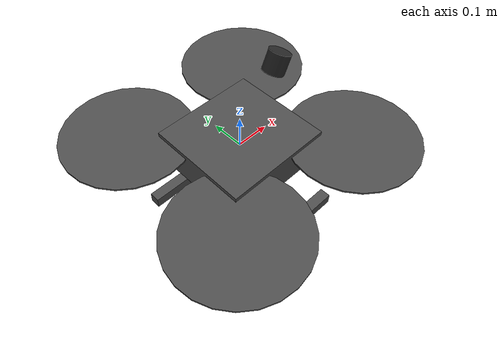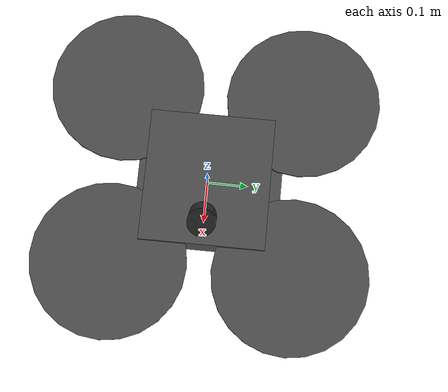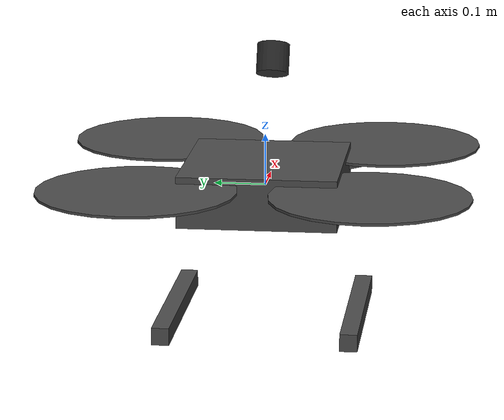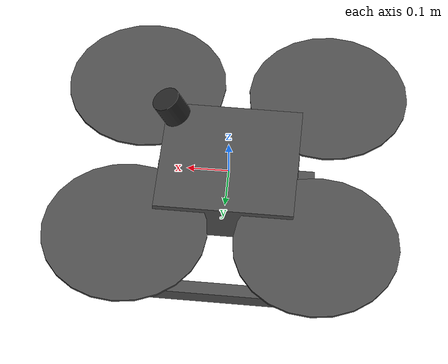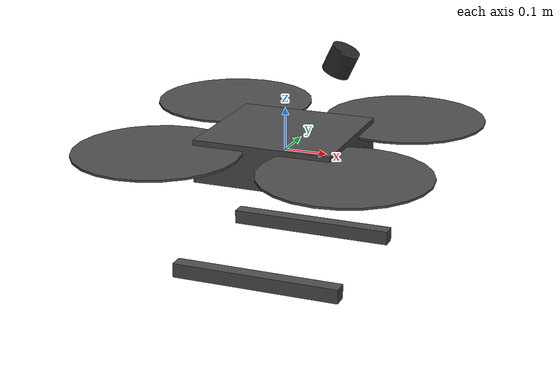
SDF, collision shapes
<?xml version="1.0"?>
<sdf version="1.6">
  <model name="iris_mid360">
    <include>
      <uri>model://mine_uav_800_no_gps</uri>
      <name>iris</name>
    </include>

    <link name="mid360_link">
      <!-- FLU: 131.5 mm forward, 173 mm above the 50 mm body-top
           reference, pitched 25 deg toward -Z. -->
      <pose>0.1315 0 0.223 0 0.436332313 0</pose>
      <inertial>
        <!-- Livox MID360S mass used by the canonical vehicle: 265 g. -->
        <mass>0.265</mass>
        <inertia>
          <ixx>1.50e-4</ixx>
          <iyy>1.50e-4</iyy>
          <izz>1.40e-4</izz>
        </inertia>
      </inertial>
      <collision name="collision">
        <geometry>
          <cylinder>
            <radius>0.0325</radius>
            <length>0.06</length>
          </cylinder>
        </geometry>
      </collision>
      <visual name="visual">
        <geometry>
          <cylinder>
            <radius>0.0325</radius>
            <length>0.06</length>
          </cylinder>
        </geometry>
        <material>
          <ambient>0.1 0.1 0.1 1</ambient>
          <diffuse>0.15 0.15 0.15 1</diffuse>
        </material>
      </visual>

      <sensor name="mid360_ray" type="ray">
        <pose>0 0 0 0 0 0</pose>
        <always_on>true</always_on>
        <update_rate>10</update_rate>
        <visualize>false</visualize>
        <ray>
          <scan>
            <horizontal>
              <samples>360</samples>
              <resolution>1</resolution>
              <min_angle>-3.14159265</min_angle>
              <max_angle>3.14159265</max_angle>
            </horizontal>
            <vertical>
              <samples>32</samples>
              <resolution>1</resolution>
              <min_angle>-0.122173048</min_angle>
              <max_angle>0.907571211</max_angle>
            </vertical>
          </scan>
          <range>
            <min>0.20</min>
            <max>30.0</max>
            <resolution>0.03</resolution>
          </range>
          <noise>
            <type>gaussian</type>
            <mean>0.0</mean>
            <stddev>0.02</stddev>
          </noise>
        </ray>
        <plugin name="mid360_ros" filename="libgazebo_ros_block_laser.so">
          <robotNamespace>/</robotNamespace>
          <alwaysOn>true</alwaysOn>
          <updateRate>10</updateRate>
          <topicName>/mine_uav/sitl/mid360/points</topicName>
          <frameName>mid360_link</frameName>
          <gaussianNoise>0.0</gaussianNoise>
        </plugin>
      </sensor>
      <sensor name="shaft_downward_ray" type="ray">
        <pose>0.122980734 0 -0.574888632 0 1.134464014 0</pose>
        <always_on>true</always_on>
        <update_rate>20</update_rate>
        <ray>
          <scan>
            <horizontal>
              <samples>11</samples><resolution>1</resolution>
              <min_angle>-0.785398163</min_angle><max_angle>0.785398163</max_angle>
            </horizontal>
            <vertical>
              <samples>11</samples><resolution>1</resolution>
              <min_angle>-0.785398163</min_angle><max_angle>0.785398163</max_angle>
            </vertical>
          </scan>
          <range><min>0.2</min><max>30.0</max><resolution>0.01</resolution></range>
          <noise><type>gaussian</type><mean>0</mean><stddev>0.01</stddev></noise>
        </ray>
        <plugin name="shaft_downward_ros" filename="libgazebo_ros_range.so">
          <robotNamespace>/</robotNamespace>
          <alwaysOn>true</alwaysOn><updateRate>20</updateRate>
          <topicName>/mine_uav/sitl/shaft_downward_range</topicName>
          <frameName>shaft_downward_range</frameName>
          <fov>1.570796327</fov><radiation>infrared</radiation>
          <gaussianNoise>0.0</gaussianNoise>
        </plugin>
      </sensor>
    </link>

    <joint name="mid360_joint" type="fixed">
      <parent>iris::base_link</parent>
      <child>mid360_link</child>
    </joint>
  </model>
</sdf>

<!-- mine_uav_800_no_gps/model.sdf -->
<!-- Canonical shared Task 1 / Task 2 vehicle model. -->
<sdf version='1.6'>
  <model name='mine_uav_800_no_gps'>
    <link name='base_link'>
      <pose>0 0 0 0 0 0</pose>
      <inertial>
        <pose>0 0 0 0 0 0</pose>
        <mass>4.536</mass>
        <inertia>
          <!-- 4.536 kg lump: 3.256 kg body/frame/avionics plus two 0.640 kg
               battery packs. Approximate inertia. The four
               0.296 kg motors are separately positioned rotor links. -->
          <ixx>0.124</ixx>
          <ixy>0</ixy>
          <ixz>0</ixz>
          <iyy>0.124</iyy>
          <iyz>0</iyz>
          <izz>0.228</izz>
        </inertia>
      </inertial>
      <!-- Collision remains a deterministic simplified hull. The detailed
           STEP-derived mesh is visual-only so ray/contact physics stay stable. -->
      <collision name='centre_body_collision'>
        <pose>0 0 0 0 0 0</pose>
        <geometry>
          <box>
            <size>0.325 0.307 0.10</size>
          </box>
        </geometry>
        <surface>
          <contact>
            <ode>
              <min_depth>0.001</min_depth>
              <max_vel>0</max_vel>
            </ode>
          </contact>
          <friction>
            <ode/>
          </friction>
        </surface>
      </collision>
      <collision name='front_right_arm_collision'>
        <pose>0.109751 -0.109751 0.015 0 0 -0.78539816339</pose>
        <geometry><box><size>0.31 0.035 0.025</size></box></geometry>
      </collision>
      <collision name='back_left_arm_collision'>
        <pose>-0.109751 0.109751 0.015 0 0 2.35619449019</pose>
        <geometry><box><size>0.31 0.035 0.025</size></box></geometry>
      </collision>
      <collision name='front_left_arm_collision'>
        <pose>0.109751 0.109751 0.015 0 0 0.78539816339</pose>
        <geometry><box><size>0.31 0.035 0.025</size></box></geometry>
      </collision>
      <collision name='back_right_arm_collision'>
        <pose>-0.109751 -0.109751 0.015 0 0 -2.35619449019</pose>
        <geometry><box><size>0.31 0.035 0.025</size></box></geometry>
      </collision>
      <collision name='left_landing_rail_collision'>
        <pose>0 0.18 -0.2548 0 0 0</pose>
        <geometry><box><size>0.40 0.034 0.034</size></box></geometry>
        <surface><contact><ode><kp>1e7</kp><kd>1e5</kd><min_depth>0.001</min_depth><max_vel>0.01</max_vel></ode></contact><friction><ode><mu>1.0</mu><mu2>1.0</mu2></ode></friction></surface>
      </collision>
      <collision name='right_landing_rail_collision'>
        <pose>0 -0.18 -0.2548 0 0 0</pose>
        <geometry><box><size>0.40 0.034 0.034</size></box></geometry>
        <surface><contact><ode><kp>1e7</kp><kd>1e5</kd><min_depth>0.001</min_depth><max_vel>0.01</max_vel></ode></contact><friction><ode><mu>1.0</mu><mu2>1.0</mu2></ode></friction></surface>
      </collision>
      <visual name='step_body_visual'>
        <!-- STEP millimetres -> metres, native [X,Y,Z] -> FLU [X,-Z,Y].
             The translation places the four motor-centre mean at the body
             origin horizontally and at z=0.035 m vertically. -->
        <pose>0.010174 1.1 0.044978 1.57079632679 0 0</pose>
        <geometry>
          <mesh>
            <uri>model://mine_uav_800_no_gps/meshes/uav_body_step_visual.stl</uri>
            <scale>0.001 0.001 0.001</scale>
          </mesh>
        </geometry>
        <material>
          <script>
            <name>Gazebo/DarkGrey</name>
            <uri>file://media/materials/scripts/gazebo.material</uri>
          </script>
        </material>
      </visual>
      <gravity>1</gravity>
      <velocity_decay/>
    </link>
    <link name='/imu_link'>
      <pose>0 0 0.02 0 0 0</pose>
      <inertial>
        <pose>0 0 0 0 0 0</pose>
        <mass>0.015</mass>
        <inertia>
          <ixx>1e-05</ixx>
          <ixy>0</ixy>
          <ixz>0</ixz>
          <iyy>1e-05</iyy>
          <iyz>0</iyz>
          <izz>1e-05</izz>
        </inertia>
      </inertial>
    </link>
    <joint name='/imu_joint' type='revolute'>
      <child>/imu_link</child>
      <parent>base_link</parent>
      <axis>
        <xyz>1 0 0</xyz>
        <limit>
          <lower>0</lower>
          <upper>0</upper>
          <effort>0</effort>
          <velocity>0</velocity>
        </limit>
        <dynamics>
          <spring_reference>0</spring_reference>
          <spring_stiffness>0</spring_stiffness>
        </dynamics>
        <use_parent_model_frame>1</use_parent_model_frame>
      </axis>
    </joint>
    <link name='rotor_0'>
      <pose>0.219501 -0.219501 0.035 0 0 0</pose>
      <inertial>
        <pose>0 0 0 0 0 0</pose>
        <mass>0.296</mass>
        <inertia>
          <!-- U7 motor plus provisional 15x5 propeller inertia. -->
          <ixx>0.00029</ixx>
          <ixy>0</ixy>
          <ixz>0</ixz>
          <iyy>0.00029</iyy>
          <iyz>0</iyz>
          <izz>0.00050</izz>
        </inertia>
      </inertial>
      <collision name='rotor_0_collision'>
        <pose>0 0 0 0 0 0</pose>
        <geometry>
          <cylinder>
            <length>0.005</length>
            <radius>0.1905</radius>
          </cylinder>
        </geometry>
        <surface>
          <contact>
            <ode/>
          </contact>
          <friction>
            <ode/>
          </friction>
        </surface>
      </collision>
      <visual name='motor_0_visual'>
        <pose>0 0 -0.01975 0 0 0</pose>
        <geometry><cylinder><length>0.0395</length><radius>0.03035</radius></cylinder></geometry>
        <material><script><name>Gazebo/DarkGrey</name><uri>file://media/materials/scripts/gazebo.material</uri></script></material>
      </visual>
      <visual name='rotor_0_visual'>
        <pose>0 0 0 0 0 0</pose>
        <geometry>
          <mesh>
            <scale>1.488 1.488 1</scale>
            <uri>model://iris/meshes/iris_prop_ccw.dae</uri>
          </mesh>
        </geometry>
        <material>
          <script>
            <name>Gazebo/Blue</name>
            <uri>file://media/materials/scripts/gazebo.material</uri>
          </script>
        </material>
      </visual>
      <gravity>1</gravity>
      <velocity_decay/>
    </link>
    <joint name='rotor_0_joint' type='revolute'>
      <child>rotor_0</child>
      <parent>base_link</parent>
      <axis>
        <xyz>0 0 1</xyz>
        <limit>
          <lower>-1e+16</lower>
          <upper>1e+16</upper>
        </limit>
        <dynamics>
          <spring_reference>0</spring_reference>
          <spring_stiffness>0</spring_stiffness>
        </dynamics>
        <use_parent_model_frame>1</use_parent_model_frame>
      </axis>
    </joint>
    <link name='rotor_1'>
      <pose>-0.219501 0.219501 0.035 0 0 0</pose>
      <inertial>
        <pose>0 0 0 0 0 0</pose>
        <mass>0.296</mass>
        <inertia>
          <!-- U7 motor plus provisional 15x5 propeller inertia. -->
          <ixx>0.00029</ixx>
          <ixy>0</ixy>
          <ixz>0</ixz>
          <iyy>0.00029</iyy>
          <iyz>0</iyz>
          <izz>0.00050</izz>
        </inertia>
      </inertial>
      <collision name='rotor_1_collision'>
        <pose>0 0 0 0 0 0</pose>
        <geometry>
          <cylinder>
            <length>0.005</length>
            <radius>0.1905</radius>
          </cylinder>
        </geometry>
        <surface>
          <contact>
            <ode/>
          </contact>
          <friction>
            <ode/>
          </friction>
        </surface>
      </collision>
      <visual name='motor_1_visual'>
        <pose>0 0 -0.01975 0 0 0</pose>
        <geometry><cylinder><length>0.0395</length><radius>0.03035</radius></cylinder></geometry>
        <material><script><name>Gazebo/DarkGrey</name><uri>file://media/materials/scripts/gazebo.material</uri></script></material>
      </visual>
      <visual name='rotor_1_visual'>
        <pose>0 0 0 0 0 0</pose>
        <geometry>
          <mesh>
            <scale>1.488 1.488 1</scale>
            <uri>model://iris/meshes/iris_prop_ccw.dae</uri>
          </mesh>
        </geometry>
        <material>
          <script>
            <name>Gazebo/DarkGrey</name>
            <uri>file://media/materials/scripts/gazebo.material</uri>
          </script>
        </material>
      </visual>
      <gravity>1</gravity>
      <velocity_decay/>
    </link>
    <joint name='rotor_1_joint' type='revolute'>
      <child>rotor_1</child>
      <parent>base_link</parent>
      <axis>
        <xyz>0 0 1</xyz>
        <limit>
          <lower>-1e+16</lower>
          <upper>1e+16</upper>
        </limit>
        <dynamics>
          <spring_reference>0</spring_reference>
          <spring_stiffness>0</spring_stiffness>
        </dynamics>
        <use_parent_model_frame>1</use_parent_model_frame>
      </axis>
    </joint>
    <link name='rotor_2'>
      <pose>0.219501 0.219501 0.035 0 0 0</pose>
      <inertial>
        <pose>0 0 0 0 0 0</pose>
        <mass>0.296</mass>
        <inertia>
          <!-- U7 motor plus provisional 15x5 propeller inertia. -->
          <ixx>0.00029</ixx>
          <ixy>0</ixy>
          <ixz>0</ixz>
          <iyy>0.00029</iyy>
          <iyz>0</iyz>
          <izz>0.00050</izz>
        </inertia>
      </inertial>
      <collision name='rotor_2_collision'>
        <pose>0 0 0 0 0 0</pose>
        <geometry>
          <cylinder>
            <length>0.005</length>
            <radius>0.1905</radius>
          </cylinder>
        </geometry>
        <surface>
          <contact>
            <ode/>
          </contact>
          <friction>
            <ode/>
          </friction>
        </surface>
      </collision>
      <visual name='motor_2_visual'>
        <pose>0 0 -0.01975 0 0 0</pose>
        <geometry><cylinder><length>0.0395</length><radius>0.03035</radius></cylinder></geometry>
        <material><script><name>Gazebo/DarkGrey</name><uri>file://media/materials/scripts/gazebo.material</uri></script></material>
      </visual>
      <visual name='rotor_2_visual'>
        <pose>0 0 0 0 0 0</pose>
        <geometry>
          <mesh>
            <scale>1.488 1.488 1</scale>
            <uri>model://iris/meshes/iris_prop_cw.dae</uri>
          </mesh>
        </geometry>
        <material>
          <script>
            <name>Gazebo/Blue</name>
            <uri>file://media/materials/scripts/gazebo.material</uri>
          </script>
        </material>
      </visual>
      <gravity>1</gravity>
      <velocity_decay/>
    </link>
    <joint name='rotor_2_joint' type='revolute'>
      <child>rotor_2</child>
      <parent>base_link</parent>
      <axis>
        <xyz>0 0 1</xyz>
        <limit>
          <lower>-1e+16</lower>
          <upper>1e+16</upper>
        </limit>
        <dynamics>
          <spring_reference>0</spring_reference>
          <spring_stiffness>0</spring_stiffness>
        </dynamics>
        <use_parent_model_frame>1</use_parent_model_frame>
      </axis>
    </joint>
    <link name='rotor_3'>
      <pose>-0.219501 -0.219501 0.035 0 0 0</pose>
      <inertial>
        <pose>0 0 0 0 0 0</pose>
        <mass>0.296</mass>
        <inertia>
          <!-- U7 motor plus provisional 15x5 propeller inertia. -->
          <ixx>0.00029</ixx>
          <ixy>0</ixy>
          <ixz>0</ixz>
          <iyy>0.00029</iyy>
          <iyz>0</iyz>
          <izz>0.00050</izz>
        </inertia>
      </inertial>
      <collision name='rotor_3_collision'>
        <pose>0 0 0 0 0 0</pose>
        <geometry>
          <cylinder>
            <length>0.005</length>
            <radius>0.1905</radius>
          </cylinder>
        </geometry>
        <surface>
          <contact>
            <ode/>
          </contact>
          <friction>
            <ode/>
          </friction>
        </surface>
      </collision>
      <visual name='motor_3_visual'>
        <pose>0 0 -0.01975 0 0 0</pose>
        <geometry><cylinder><length>0.0395</length><radius>0.03035</radius></cylinder></geometry>
        <material><script><name>Gazebo/DarkGrey</name><uri>file://media/materials/scripts/gazebo.material</uri></script></material>
      </visual>
      <visual name='rotor_3_visual'>
        <pose>0 0 0 0 0 0</pose>
        <geometry>
          <mesh>
            <scale>1.488 1.488 1</scale>
            <uri>model://iris/meshes/iris_prop_cw.dae</uri>
          </mesh>
        </geometry>
        <material>
          <script>
            <name>Gazebo/DarkGrey</name>
            <uri>file://media/materials/scripts/gazebo.material</uri>
          </script>
        </material>
      </visual>
      <gravity>1</gravity>
      <velocity_decay/>
    </link>
    <joint name='rotor_3_joint' type='revolute'>
      <child>rotor_3</child>
      <parent>base_link</parent>
      <axis>
        <xyz>0 0 1</xyz>
        <limit>
          <lower>-1e+16</lower>
          <upper>1e+16</upper>
        </limit>
        <dynamics>
          <spring_reference>0</spring_reference>
          <spring_stiffness>0</spring_stiffness>
        </dynamics>
        <use_parent_model_frame>1</use_parent_model_frame>
      </axis>
    </joint>
    <plugin name='rosbag' filename='libgazebo_multirotor_base_plugin.so'>
      <robotNamespace/>
      <linkName>base_link</linkName>
      <rotorVelocitySlowdownSim>10</rotorVelocitySlowdownSim>
    </plugin>
    <plugin name='front_right_motor_model' filename='libgazebo_motor_model.so'>
      <robotNamespace/>
      <jointName>rotor_0_joint</jointName>
      <linkName>rotor_0</linkName>
      <turningDirection>ccw</turningDirection>
      <timeConstantUp>0.0125</timeConstantUp>
      <timeConstantDown>0.025</timeConstantDown>
      <maxRotVelocity>973.768059</maxRotVelocity>
      <motorConstant>4.79874427e-05</motorConstant>
      <momentConstant>0.00789903182</momentConstant>
      <commandSubTopic>/gazebo/command/motor_speed</commandSubTopic>
      <motorNumber>0</motorNumber>
      <rotorDragCoefficient>0.000175</rotorDragCoefficient>
      <rollingMomentCoefficient>1e-06</rollingMomentCoefficient>
      <motorSpeedPubTopic>/motor_speed/0</motorSpeedPubTopic>
      <rotorVelocitySlowdownSim>10</rotorVelocitySlowdownSim>
    </plugin>
    <plugin name='back_left_motor_model' filename='libgazebo_motor_model.so'>
      <robotNamespace/>
      <jointName>rotor_1_joint</jointName>
      <linkName>rotor_1</linkName>
      <turningDirection>ccw</turningDirection>
      <timeConstantUp>0.0125</timeConstantUp>
      <timeConstantDown>0.025</timeConstantDown>
      <maxRotVelocity>973.768059</maxRotVelocity>
      <motorConstant>4.79874427e-05</motorConstant>
      <momentConstant>0.00789903182</momentConstant>
      <commandSubTopic>/gazebo/command/motor_speed</commandSubTopic>
      <motorNumber>1</motorNumber>
      <rotorDragCoefficient>0.000175</rotorDragCoefficient>
      <rollingMomentCoefficient>1e-06</rollingMomentCoefficient>
      <motorSpeedPubTopic>/motor_speed/1</motorSpeedPubTopic>
      <rotorVelocitySlowdownSim>10</rotorVelocitySlowdownSim>
    </plugin>
    <plugin name='front_left_motor_model' filename='libgazebo_motor_model.so'>
      <robotNamespace/>
      <jointName>rotor_2_joint</jointName>
      <linkName>rotor_2</linkName>
      <turningDirection>cw</turningDirection>
      <timeConstantUp>0.0125</timeConstantUp>
      <timeConstantDown>0.025</timeConstantDown>
      <maxRotVelocity>973.768059</maxRotVelocity>
      <motorConstant>4.79874427e-05</motorConstant>
      <momentConstant>0.00789903182</momentConstant>
      <commandSubTopic>/gazebo/command/motor_speed</commandSubTopic>
      <motorNumber>2</motorNumber>
      <rotorDragCoefficient>0.000175</rotorDragCoefficient>
      <rollingMomentCoefficient>1e-06</rollingMomentCoefficient>
      <motorSpeedPubTopic>/motor_speed/2</motorSpeedPubTopic>
      <rotorVelocitySlowdownSim>10</rotorVelocitySlowdownSim>
    </plugin>
    <plugin name='back_right_motor_model' filename='libgazebo_motor_model.so'>
      <robotNamespace/>
      <jointName>rotor_3_joint</jointName>
      <linkName>rotor_3</linkName>
      <turningDirection>cw</turningDirection>
      <timeConstantUp>0.0125</timeConstantUp>
      <timeConstantDown>0.025</timeConstantDown>
      <maxRotVelocity>973.768059</maxRotVelocity>
      <motorConstant>4.79874427e-05</motorConstant>
      <momentConstant>0.00789903182</momentConstant>
      <commandSubTopic>/gazebo/command/motor_speed</commandSubTopic>
      <motorNumber>3</motorNumber>
      <rotorDragCoefficient>0.000175</rotorDragCoefficient>
      <rollingMomentCoefficient>1e-06</rollingMomentCoefficient>
      <motorSpeedPubTopic>/motor_speed/3</motorSpeedPubTopic>
      <rotorVelocitySlowdownSim>10</rotorVelocitySlowdownSim>
    </plugin>
    <!-- No GPS sensor: the real aircraft localizes with a Livox MID360S. -->
    <plugin name='groundtruth_plugin' filename='libgazebo_groundtruth_plugin.so'>
      <robotNamespace/>
    </plugin>
    <plugin name='magnetometer_plugin' filename='libgazebo_magnetometer_plugin.so'>
      <robotNamespace/>
      <pubRate>100</pubRate>
      <noiseDensity>0.0004</noiseDensity>
      <randomWalk>6.4e-06</randomWalk>
      <biasCorrelationTime>600</biasCorrelationTime>
      <magTopic>/mag</magTopic>
    </plugin>
    <plugin name='barometer_plugin' filename='libgazebo_barometer_plugin.so'>
      <robotNamespace/>
      <pubRate>50</pubRate>
      <baroTopic>/baro</baroTopic>
      <baroDriftPaPerSec>0</baroDriftPaPerSec>
    </plugin>
    <plugin name='mavlink_interface' filename='libgazebo_mavlink_interface.so'>
      <robotNamespace/>
      <imuSubTopic>/imu</imuSubTopic>
      <magSubTopic>/mag</magSubTopic>
      <baroSubTopic>/baro</baroSubTopic>
      <mavlink_addr>INADDR_ANY</mavlink_addr>
      <mavlink_tcp_port>4562</mavlink_tcp_port>
      <mavlink_udp_port>14562</mavlink_udp_port>
      <serialEnabled>0</serialEnabled>
      <serialDevice>/dev/ttyACM0</serialDevice>
      <baudRate>921600</baudRate>
      <qgc_addr>INADDR_ANY</qgc_addr>
      <qgc_udp_port>14550</qgc_udp_port>
      <sdk_addr>INADDR_ANY</sdk_addr>
      <sdk_udp_port>14540</sdk_udp_port>
      <hil_mode>0</hil_mode>
      <hil_state_level>0</hil_state_level>
      <send_vision_estimation>0</send_vision_estimation>
      <send_odometry>1</send_odometry>
      <enable_lockstep>1</enable_lockstep>
      <use_tcp>1</use_tcp>
      <motorSpeedCommandPubTopic>/gazebo/command/motor_speed</motorSpeedCommandPubTopic>
      <control_channels>
        <channel name='rotor1'>
          <input_index>0</input_index>
          <input_offset>0</input_offset>
          <input_scaling>973.768059</input_scaling>
          <zero_position_disarmed>0</zero_position_disarmed>
          <zero_position_armed>100</zero_position_armed>
          <joint_control_type>velocity</joint_control_type>
        </channel>
        <channel name='rotor2'>
          <input_index>1</input_index>
          <input_offset>0</input_offset>
          <input_scaling>973.768059</input_scaling>
          <zero_position_disarmed>0</zero_position_disarmed>
          <zero_position_armed>100</zero_position_armed>
          <joint_control_type>velocity</joint_control_type>
        </channel>
        <channel name='rotor3'>
          <input_index>2</input_index>
          <input_offset>0</input_offset>
          <input_scaling>973.768059</input_scaling>
          <zero_position_disarmed>0</zero_position_disarmed>
          <zero_position_armed>100</zero_position_armed>
          <joint_control_type>velocity</joint_control_type>
        </channel>
        <channel name='rotor4'>
          <input_index>3</input_index>
          <input_offset>0</input_offset>
          <input_scaling>973.768059</input_scaling>
          <zero_position_disarmed>0</zero_position_disarmed>
          <zero_position_armed>100</zero_position_armed>
          <joint_control_type>velocity</joint_control_type>
        </channel>
        <channel name='rotor5'>
          <input_index>4</input_index>
          <input_offset>1</input_offset>
          <input_scaling>324.6</input_scaling>
          <zero_position_disarmed>0</zero_position_disarmed>
          <zero_position_armed>0</zero_position_armed>
          <joint_control_type>velocity</joint_control_type>
          <joint_control_pid>
            <p>0.1</p>
            <i>0</i>
            <d>0</d>
            <iMax>0.0</iMax>
            <iMin>0.0</iMin>
            <cmdMax>2</cmdMax>
            <cmdMin>-2</cmdMin>
          </joint_control_pid>
          <joint_name>zephyr_delta_wing::propeller_joint</joint_name>
        </channel>
        <channel name='rotor6'>
          <input_index>5</input_index>
          <input_offset>0</input_offset>
          <input_scaling>0.524</input_scaling>
          <zero_position_disarmed>0</zero_position_disarmed>
          <zero_position_armed>0</zero_position_armed>
          <joint_control_type>position</joint_control_type>
          <joint_name>zephyr_delta_wing::flap_left_joint</joint_name>
          <joint_control_pid>
            <p>10.0</p>
            <i>0</i>
            <d>0</d>
            <iMax>0</iMax>
            <iMin>0</iMin>
            <cmdMax>20</cmdMax>
            <cmdMin>-20</cmdMin>
          </joint_control_pid>
        </channel>
        <channel name='rotor7'>
          <input_index>6</input_index>
          <input_offset>0</input_offset>
          <input_scaling>0.524</input_scaling>
          <zero_position_disarmed>0</zero_position_disarmed>
          <zero_position_armed>0</zero_position_armed>
          <joint_control_type>position</joint_control_type>
          <joint_name>zephyr_delta_wing::flap_right_joint</joint_name>
          <joint_control_pid>
            <p>10.0</p>
            <i>0</i>
            <d>0</d>
            <iMax>0</iMax>
            <iMin>0</iMin>
            <cmdMax>20</cmdMax>
            <cmdMin>-20</cmdMin>
          </joint_control_pid>
        </channel>
        <channel name='rotor8'>
          <input_index>7</input_index>
          <input_offset>0</input_offset>
          <input_scaling>0.524</input_scaling>
          <zero_position_disarmed>0</zero_position_disarmed>
          <zero_position_armed>0</zero_position_armed>
          <joint_control_type>position</joint_control_type>
        </channel>
      </control_channels>
    </plugin>
    <static>0</static>
    <allow_auto_disable>false</allow_auto_disable>
    <plugin name='rotors_gazebo_imu_plugin' filename='libgazebo_imu_plugin.so'>
      <robotNamespace/>
      <linkName>/imu_link</linkName>
      <imuTopic>/imu</imuTopic>
      <gyroscopeNoiseDensity>0.00018665</gyroscopeNoiseDensity>
      <gyroscopeRandomWalk>3.8785e-05</gyroscopeRandomWalk>
      <gyroscopeBiasCorrelationTime>1000.0</gyroscopeBiasCorrelationTime>
      <gyroscopeTurnOnBiasSigma>0.0087</gyroscopeTurnOnBiasSigma>
      <accelerometerNoiseDensity>0.00186</accelerometerNoiseDensity>
      <accelerometerRandomWalk>0.006</accelerometerRandomWalk>
      <accelerometerBiasCorrelationTime>300.0</accelerometerBiasCorrelationTime>
      <accelerometerTurnOnBiasSigma>0.196</accelerometerTurnOnBiasSigma>
    </plugin>
  </model>
</sdf>
